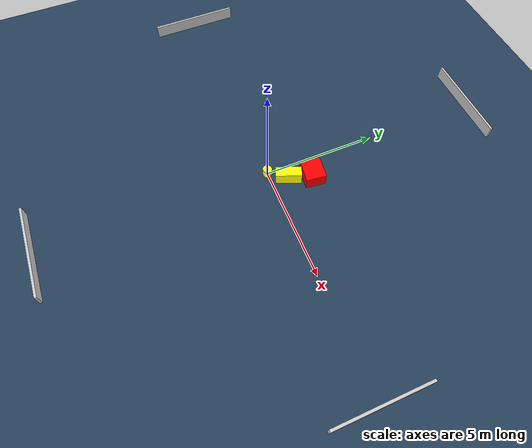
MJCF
<?xml version="1.0" ?>
<mujoco model="generated_environment">
  <option timestep="0.01" integrator="RK4" cone="elliptic"/>
  <default>
    <geom density="1"/>
  </default>
  <asset>
    <texture builtin="gradient" height="3072" name="skybox" rgb1="0.3 0.5 0.7" rgb2="0 0 0" type="skybox" width="512"/>
    <texture builtin="checker" height="300" name="groundplane" rgb1="0.2 0.3 0.4" rgb2="0.1 0.2 0.3" type="2d" width="300"/>
    <material name="groundplane" reflectance="0.2" texrepeat="5 5" texture="groundplane"/>
  </asset>
  <worldbody>
    <light dir="0 0 -1" directional="true" pos="0 0 1.5"/>
    <geom condim="3" friction="0.5 0.005 0.001" material="groundplane" name="floor" pos="0 0 0" size="0 0 0.05" type="plane"/>
    <body name="walls">
      <geom name="wall_1" condim="4" pos="-10.0 0.0 0.3" rgba="0.800000011920929 0.800000011920929 0.800000011920929 1.0" size="0.05 2.0 0.3" type="box"/>
      <geom name="wall_2" condim="4" pos="10.0 0.0 0.3" rgba="0.800000011920929 0.800000011920929 0.800000011920929 1.0" size="0.05 2.0 0.3" type="box"/>
      <geom name="wall_3" condim="4" pos="0.0 -10.0 0.3" rgba="0.800000011920929 0.800000011920929 0.800000011920929 1.0" size="2.0 0.05 0.3" type="box"/>
      <geom name="wall_4" condim="4" pos="0.0 10.0 0.3" rgba="0.800000011920929 0.800000011920929 0.800000011920929 1.0" size="2.0 0.05 0.3" type="box"/>
    </body>
    <body name="robot">
      <joint name="joint_x" type="slide" pos="0 0 0" axis="1 0 0"/>
      <joint name="joint_y" type="slide" pos="0 0 0" axis="0 1 0"/>
      <geom name="robot" type="cylinder" pos="0.0 0.0 0.2" size="0.2 0.2 0.0" mass="5.0" friction="1.0 0.005 0.0001" condim="4" rgba="1.0 1.0 0.0 1.0"/>
    </body>
    <body name="obstacle_1_movable">
      <geom name="obstacle_1_movable" condim="4" pos="0.567158853103751 0.7359812412401918 0.3" euler="0 0 68.25149658546867" friction="0.0 0.005 0.001" rgba="1.0 1.0 0.0 1.0" size="0.5570550694108563 0.2244003818361315 0.3" type="box" mass="0.1"/>
      <joint type="free"/>
    </body>
    <body name="obstacle_2_static">
      <geom name="obstacle_2_static" condim="4" pos="0.8428589797044734 1.749064475613321 0.3" euler="0 0 262.53768137949066" friction="0.0 0.005 0.001" rgba="1.0 0.0 0.0 1.0" size="0.4361052933054695 0.500372983175574 0.3" type="box"/>
    </body>
  </worldbody>
  <actuator>
    <motor name="actuator_x" joint="joint_x" gear="1" ctrlrange="-1 1"/>
    <motor name="actuator_y" joint="joint_y" gear="1" ctrlrange="-1 1"/>
  </actuator>
</mujoco>
